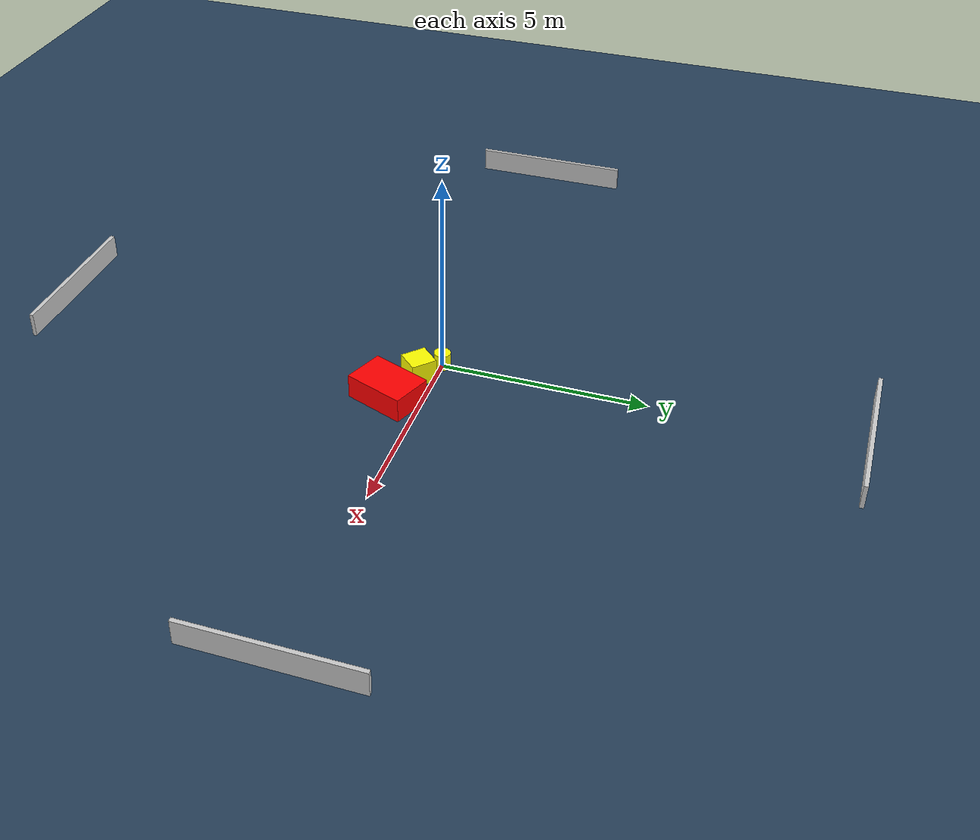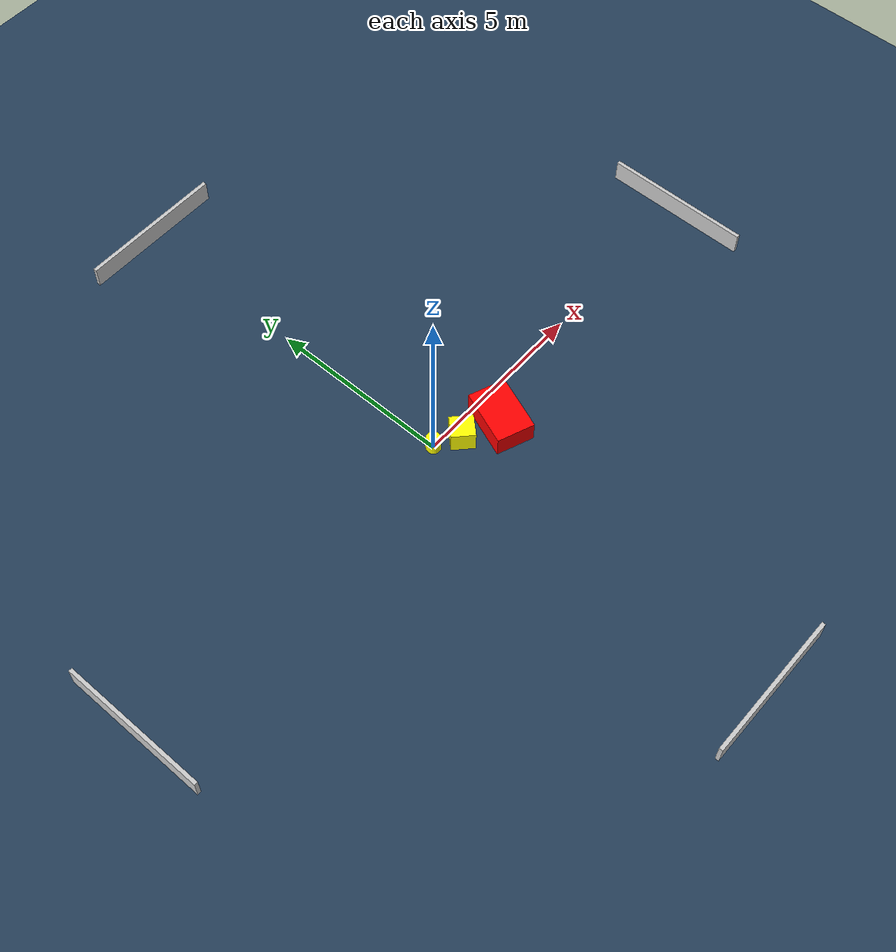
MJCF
<?xml version="1.0" ?>
<mujoco model="generated_environment">
  <option timestep="0.01" integrator="RK4" cone="elliptic"/>
  <default>
    <geom density="1"/>
  </default>
  <asset>
    <texture builtin="gradient" height="3072" name="skybox" rgb1="0.3 0.5 0.7" rgb2="0 0 0" type="skybox" width="512"/>
    <texture builtin="checker" height="300" name="groundplane" rgb1="0.2 0.3 0.4" rgb2="0.1 0.2 0.3" type="2d" width="300"/>
    <material name="groundplane" reflectance="0.2" texrepeat="5 5" texture="groundplane"/>
  </asset>
  <worldbody>
    <light dir="0 0 -1" directional="true" pos="0 0 1.5"/>
    <geom condim="3" friction="0.5 0.005 0.001" material="groundplane" name="floor" pos="0 0 0" size="0 0 0.05" type="plane"/>
    <body name="walls">
      <geom name="wall_1" condim="4" pos="-10.0 0.0 0.3" rgba="0.800000011920929 0.800000011920929 0.800000011920929 1.0" size="0.05 2.0 0.3" type="box"/>
      <geom name="wall_2" condim="4" pos="10.0 0.0 0.3" rgba="0.800000011920929 0.800000011920929 0.800000011920929 1.0" size="0.05 2.0 0.3" type="box"/>
      <geom name="wall_3" condim="4" pos="0.0 -10.0 0.3" rgba="0.800000011920929 0.800000011920929 0.800000011920929 1.0" size="2.0 0.05 0.3" type="box"/>
      <geom name="wall_4" condim="4" pos="0.0 10.0 0.3" rgba="0.800000011920929 0.800000011920929 0.800000011920929 1.0" size="2.0 0.05 0.3" type="box"/>
    </body>
    <body name="robot">
      <joint name="joint_x" type="slide" pos="0 0 0" axis="1 0 0"/>
      <joint name="joint_y" type="slide" pos="0 0 0" axis="0 1 0"/>
      <geom name="robot" type="cylinder" pos="0.0 0.0 0.2" size="0.2 0.2 0.0" mass="5.0" friction="1.0 0.005 0.0001" condim="4" rgba="1.0 1.0 0.0 1.0"/>
    </body>
    <body name="obstacle_1_movable">
      <geom name="obstacle_1_movable" condim="4" pos="0.6405885755441483 -0.37636042619603577 0.3" euler="0 0 226.69362689695657" friction="0.0 0.005 0.001" rgba="1.0 1.0 0.0 1.0" size="0.29844550153093913 0.31207729077221963 0.3" type="box" mass="0.1"/>
      <joint type="free"/>
    </body>
    <body name="obstacle_2_static">
      <geom name="obstacle_2_static" condim="4" pos="1.6276224553649634 -0.7934776799928783 0.3" euler="0 0 248.79181912344035" friction="0.0 0.005 0.001" rgba="1.0 0.0 0.0 1.0" size="0.7594774388694332 0.5127931041276865 0.3" type="box"/>
    </body>
  </worldbody>
  <actuator>
    <motor name="actuator_x" joint="joint_x" gear="1" ctrlrange="-1 1"/>
    <motor name="actuator_y" joint="joint_y" gear="1" ctrlrange="-1 1"/>
  </actuator>
</mujoco>
